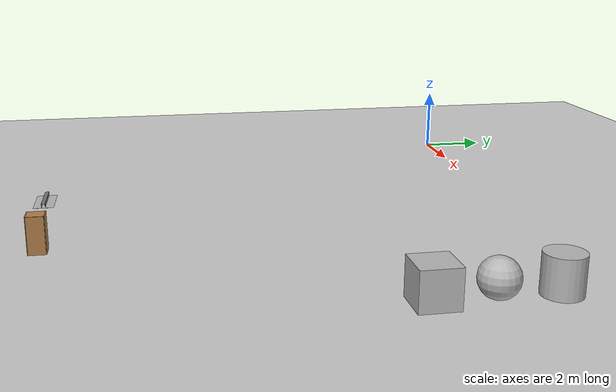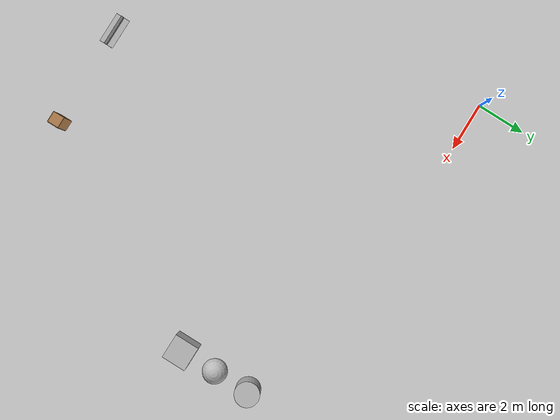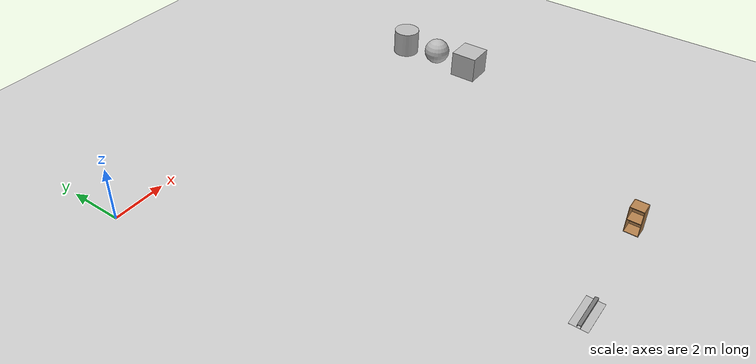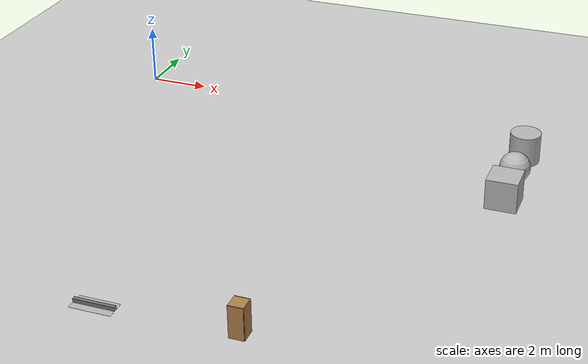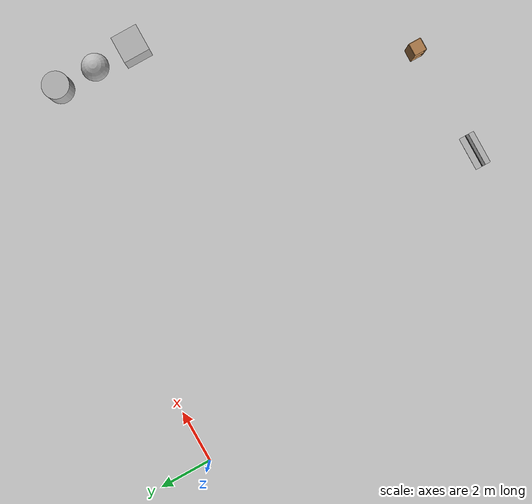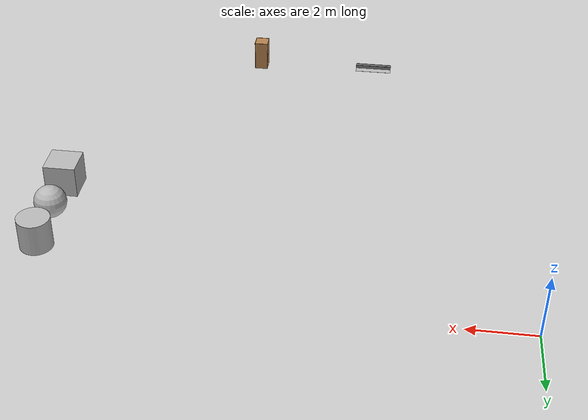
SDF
<sdf version="1.6">
 <world name="default">
  <model name="ground_plane">
   <static>1</static>
   <link name="link">
    <collision name="collision">
     <geometry><plane><normal>0 0 1</normal><size>100 100</size></plane></geometry>
     <surface><friction><ode><mu>100</mu><mu2>50</mu2></ode></friction></surface>
    </collision>
    <visual name="visual">
     <cast_shadows>0</cast_shadows>
     <geometry><plane><normal>0 0 1</normal><size>100 100</size></plane></geometry>
     <material>
      <script><uri>file://media/materials/scripts/gazebo.material</uri><name>Gazebo/Grey</name></script>
     </material>
    </visual>
   </link>
  </model>
  <model name="textured_shapes">
   <pose>14.3186 -3.31123 0.6 -0 -0 -2e-06</pose>
   <link name="box">
    <pose>0 -1.5 0 0 -0 0</pose>
    <collision name="collision"><geometry><box><size>1 1 1</size></box></geometry></collision>
    <visual name="visual">
     <geometry><box><size>1 1 1</size></box></geometry>
     <material>
      <script>
       <uri>model://textured_shapes/materials/scripts</uri>
       <uri>model://textured_shapes/materials/textures</uri>
       <name>TexturedShape/Squares</name>
      </script>
     </material>
    </visual>
    <inertial>
     <inertia><ixx>1</ixx><ixy>0</ixy><ixz>0</ixz><iyy>1</iyy><iyz>0</iyz><izz>1</izz></inertia>
     <mass>1</mass>
    </inertial>
   </link>
   <link name="sphere">
    <collision name="collision"><geometry><sphere><radius>0.5</radius></sphere></geometry></collision>
    <visual name="visual">
     <geometry><sphere><radius>0.5</radius></sphere></geometry>
     <material>
      <script>
       <uri>model://textured_shapes/materials/scripts</uri>
       <uri>model://textured_shapes/materials/textures</uri>
       <name>TexturedShape/Squares</name>
      </script>
     </material>
    </visual>
    <inertial>
     <inertia><ixx>1</ixx><ixy>0</ixy><ixz>0</ixz><iyy>1</iyy><iyz>0</iyz><izz>1</izz></inertia>
     <mass>1</mass>
    </inertial>
   </link>
   <link name="cylinder">
    <pose>0 1.5 0 0 -0 0</pose>
    <collision name="collision">
     <geometry><cylinder><radius>0.5</radius><length>1</length></cylinder></geometry>
    </collision>
    <visual name="visual">
     <geometry><cylinder><radius>0.5</radius><length>1</length></cylinder></geometry>
     <material>
      <script>
       <uri>model://textured_shapes/materials/scripts</uri>
       <uri>model://textured_shapes/materials/textures</uri>
       <name>TexturedShape/Squares</name>
      </script>
     </material>
    </visual>
    <inertial>
     <inertia><ixx>1</ixx><ixy>0</ixy><ixz>0</ixz><iyy>1</iyy><iyz>0</iyz><izz>1</izz></inertia>
     <mass>1</mass>
    </inertial>
   </link>
  </model>
  <model name="cabinet_0">
   <static>1</static>
   <link name="cabinet_bottom_plate">
    <inertial>
     <pose>0 0 -1 0 -0 0</pose>
     <inertia><ixx>2.05</ixx><ixy>0</ixy><ixz>0</ixz><iyy>2.05</iyy><iyz>0</iyz><izz>2.05</izz></inertia>
     <mass>25</mass>
    </inertial>
    <collision name="cabinet_bottom_plate_geom">
     <pose>0 0 0.01 0 -0 0</pose>
     <geometry><box><size>0.45 0.45 0.02</size></box></geometry>
    </collision>
    <visual name="cabinet_bottom_plate_geom_visual">
     <pose>0 0 0.01 0 -0 0</pose>
     <geometry><box><size>0.45 0.45 0.02</size></box></geometry>
     <material>
      <script><uri>file://media/materials/scripts/gazebo.material</uri><name>Gazebo/Wood</name></script>
     </material>
    </visual>
    <collision name="cabinet_bottom_plate_geom_cabinet_back_plate">
     <pose>0.235 0 0.51 0 -0 0</pose>
     <geometry><box><size>0.02 0.45 1.02</size></box></geometry>
    </collision>
    <visual name="cabinet_bottom_plate_geom_cabinet_back_plate_visual">
     <pose>0.235 0 0.51 0 -0 0</pose>
     <geometry><box><size>0.02 0.45 1.02</size></box></geometry>
     <material>
      <script><uri>file://media/materials/scripts/gazebo.material</uri><name>Gazebo/Wood</name></script>
     </material>
    </visual>
    <collision name="cabinet_bottom_plate_geom_cabinet_left_plate">
     <pose>0 0.235 0.51 0 -0 0</pose>
     <geometry><box><size>0.45 0.02 1.02</size></box></geometry>
    </collision>
    <visual name="cabinet_bottom_plate_geom_cabinet_left_plate_visual">
     <pose>0 0.235 0.51 0 -0 0</pose>
     <geometry><box><size>0.45 0.02 1.02</size></box></geometry>
     <material>
      <script><uri>file://media/materials/scripts/gazebo.material</uri><name>Gazebo/Wood</name></script>
     </material>
    </visual>
    <collision name="cabinet_bottom_plate_geom_cabinet_middle_plate">
     <pose>0 0 0.51 0 -0 0</pose>
     <geometry><box><size>0.45 0.45 0.02</size></box></geometry>
    </collision>
    <visual name="cabinet_bottom_plate_geom_cabinet_middle_plate_visual">
     <pose>0 0 0.51 0 -0 0</pose>
     <geometry><box><size>0.45 0.45 0.02</size></box></geometry>
     <material>
      <script><uri>file://media/materials/scripts/gazebo.material</uri><name>Gazebo/Wood</name></script>
     </material>
    </visual>
    <collision name="cabinet_bottom_plate_geom_cabinet_right_plate">
     <pose>0 -0.235 0.51 0 -0 0</pose>
     <geometry><box><size>0.45 0.02 1.02</size></box></geometry>
    </collision>
    <visual name="cabinet_bottom_plate_geom_cabinet_right_plate_visual">
     <pose>0 -0.235 0.51 0 -0 0</pose>
     <geometry><box><size>0.45 0.02 1.02</size></box></geometry>
     <material>
      <script><uri>file://media/materials/scripts/gazebo.material</uri><name>Gazebo/Wood</name></script>
     </material>
    </visual>
    <collision name="cabinet_bottom_plate_geom_cabinet_top_plate">
     <pose>0 0 1.01 0 -0 0</pose>
     <geometry><box><size>0.45 0.45 0.02</size></box></geometry>
    </collision>
    <visual name="cabinet_bottom_plate_geom_cabinet_top_plate_visual">
     <pose>0 0 1.01 0 -0 0</pose>
     <geometry><box><size>0.45 0.45 0.02</size></box></geometry>
     <material>
      <script><uri>file://media/materials/scripts/gazebo.material</uri><name>Gazebo/Wood</name></script>
     </material>
    </visual>
   </link>
   <pose>9.32804 -13.6033 0 0 -0 0</pose>
  </model>
  <model name="frc2016_rockwall">
   <static>1</static>
   <link name="link">
    <inertial>
     <mass>10</mass>
     <pose>0 0 0.08974 0 -0 0</pose>
     <inertia><ixx>0.327091</ixx><ixy>0</ixy><ixz>0</ixz><iyy>1.37417</iyy><iyz>0</iyz><izz>1.64109</izz></inertia>
    </inertial>
    <visual name="platform">
     <pose>0 0 0.06432 0 -0 0</pose>
     <geometry><box><size>1.27 0.5969 0.003175</size></box></geometry>
    </visual>
    <collision name="platform">
     <pose>0 0 0.06432 0 -0 0</pose>
     <geometry><box><size>1.27 0.5969 0.003175</size></box></geometry>
    </collision>
    <visual name="up1">
     <pose>0 0.05166 0.12537 0 -0 0</pose>
     <geometry><box><size>1.27 0.00462 0.11892</size></box></geometry>
     <material><ambient>0.46 0.46 0.46 1</ambient><diffuse>0.46 0.46 0.46 1</diffuse></material>
    </visual>
    <collision name="up1">
     <pose>0 0.05166 0.12537 0 -0 0</pose>
     <geometry><box><size>1.27 0.00462 0.11892</size></box></geometry>
    </collision>
    <visual name="up2">
     <pose>0 -0.05801 0.12537 0 -0 0</pose>
     <geometry><box><size>1.27 0.00462 0.11892</size></box></geometry>
     <material><ambient>0.46 0.46 0.46 1</ambient><diffuse>0.46 0.46 0.46 1</diffuse></material>
    </visual>
    <collision name="up2">
     <pose>0 -0.05801 0.12537 0 -0 0</pose>
     <geometry><box><size>1.27 0.00462 0.11892</size></box></geometry>
    </collision>
    <visual name="top">
     <pose>0 -0.00249 0.18252 0 -0 0</pose>
     <geometry><box><size>1.27 0.1143 0.00462</size></box></geometry>
     <material><ambient>0.46 0.46 0.46 1</ambient><diffuse>0.46 0.46 0.46 1</diffuse></material>
    </visual>
    <collision name="top">
     <pose>0 -0.00249 0.18252 0 -0 0</pose>
     <geometry><box><size>1.27 0.1143 0.00462</size></box></geometry>
    </collision>
   </link>
   <pose>5.17002 -13.8231 0 0 -0 0</pose>
  </model>
 </world>
</sdf>
